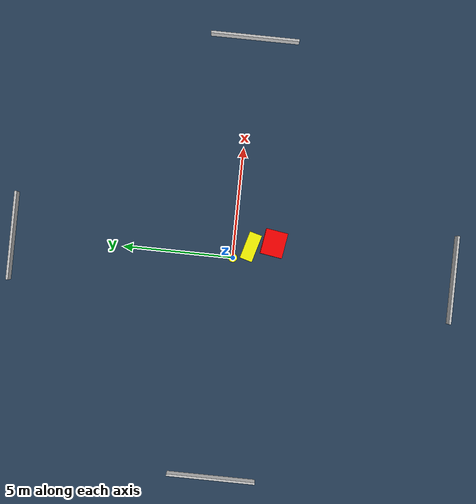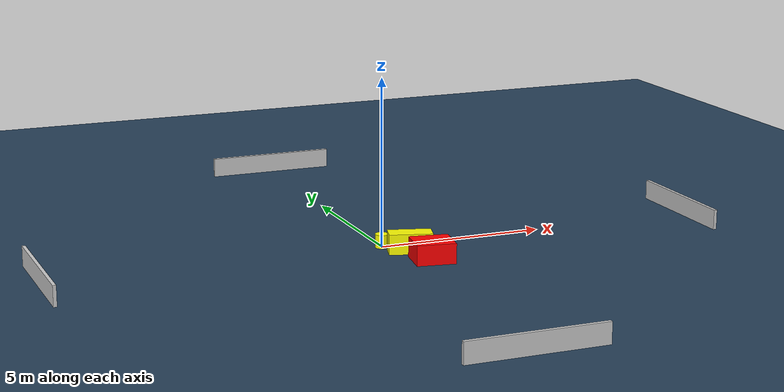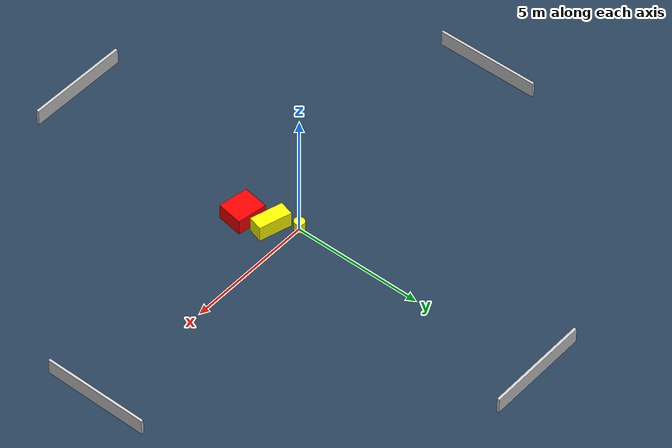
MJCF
<?xml version="1.0" ?>
<mujoco model="generated_environment">
  <option timestep="0.01" integrator="RK4" cone="elliptic"/>
  <default>
    <geom density="1"/>
  </default>
  <asset>
    <texture builtin="gradient" height="3072" name="skybox" rgb1="0.3 0.5 0.7" rgb2="0 0 0" type="skybox" width="512"/>
    <texture builtin="checker" height="300" name="groundplane" rgb1="0.2 0.3 0.4" rgb2="0.1 0.2 0.3" type="2d" width="300"/>
    <material name="groundplane" reflectance="0.2" texrepeat="5 5" texture="groundplane"/>
  </asset>
  <worldbody>
    <light dir="0 0 -1" directional="true" pos="0 0 1.5"/>
    <geom condim="3" friction="0.5 0.005 0.001" material="groundplane" name="floor" pos="0 0 0" size="0 0 0.05" type="plane"/>
    <body name="walls">
      <geom name="wall_1" condim="4" pos="-10.0 0.0 0.3" rgba="0.800000011920929 0.800000011920929 0.800000011920929 1.0" size="0.05 2.0 0.3" type="box"/>
      <geom name="wall_2" condim="4" pos="10.0 0.0 0.3" rgba="0.800000011920929 0.800000011920929 0.800000011920929 1.0" size="0.05 2.0 0.3" type="box"/>
      <geom name="wall_3" condim="4" pos="0.0 -10.0 0.3" rgba="0.800000011920929 0.800000011920929 0.800000011920929 1.0" size="2.0 0.05 0.3" type="box"/>
      <geom name="wall_4" condim="4" pos="0.0 10.0 0.3" rgba="0.800000011920929 0.800000011920929 0.800000011920929 1.0" size="2.0 0.05 0.3" type="box"/>
    </body>
    <body name="robot">
      <joint name="joint_x" type="slide" pos="0 0 0" axis="1 0 0"/>
      <joint name="joint_y" type="slide" pos="0 0 0" axis="0 1 0"/>
      <geom name="robot" type="cylinder" pos="0.0 0.0 0.2" size="0.2 0.2 0.0" mass="5.0" friction="1.0 0.005 0.0001" condim="4" rgba="1.0 1.0 0.0 1.0"/>
    </body>
    <body name="obstacle_1_movable">
      <geom name="obstacle_1_movable" condim="4" pos="0.5705402175446191 -0.7585938249640873 0.3" euler="0 0 164.1823143751934" friction="0.0 0.005 0.001" rgba="1.0 1.0 0.0 1.0" size="0.6354583409486407 0.287080593684964 0.3" type="box" mass="0.1"/>
      <joint type="free"/>
    </body>
    <body name="obstacle_2_static">
      <geom name="obstacle_2_static" condim="4" pos="0.8241894063102168 -1.782694409208295 0.3" euler="0 0 351.09444413312735" friction="0.0 0.005 0.001" rgba="1.0 0.0 0.0 1.0" size="0.5759565365018372 0.5006858216058182 0.3" type="box"/>
    </body>
  </worldbody>
  <actuator>
    <motor name="actuator_x" joint="joint_x" gear="1" ctrlrange="-1 1"/>
    <motor name="actuator_y" joint="joint_y" gear="1" ctrlrange="-1 1"/>
  </actuator>
</mujoco>
